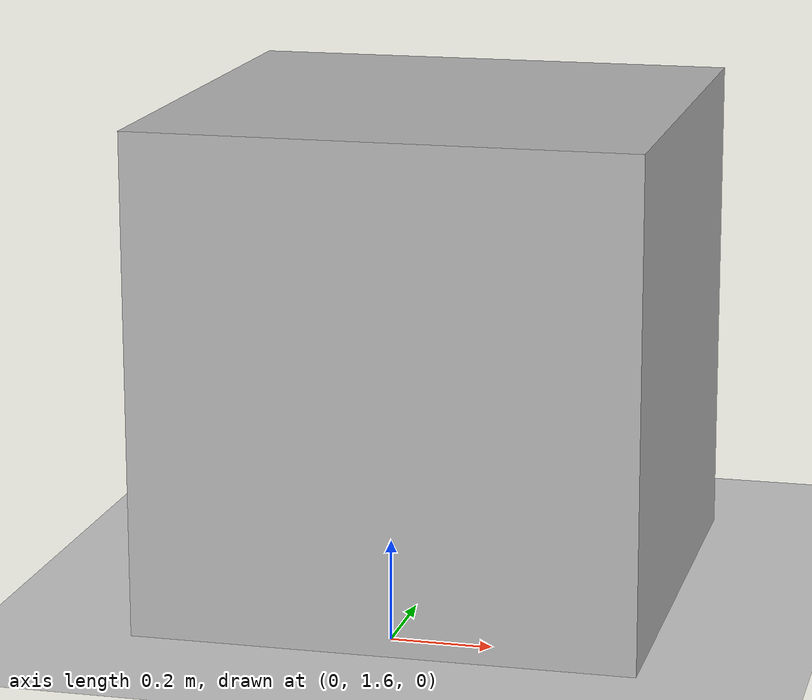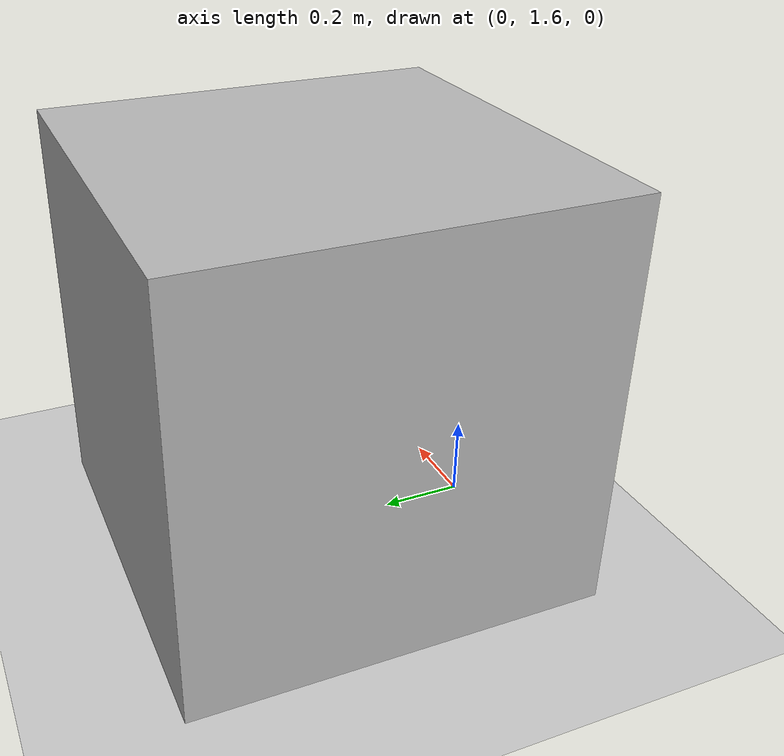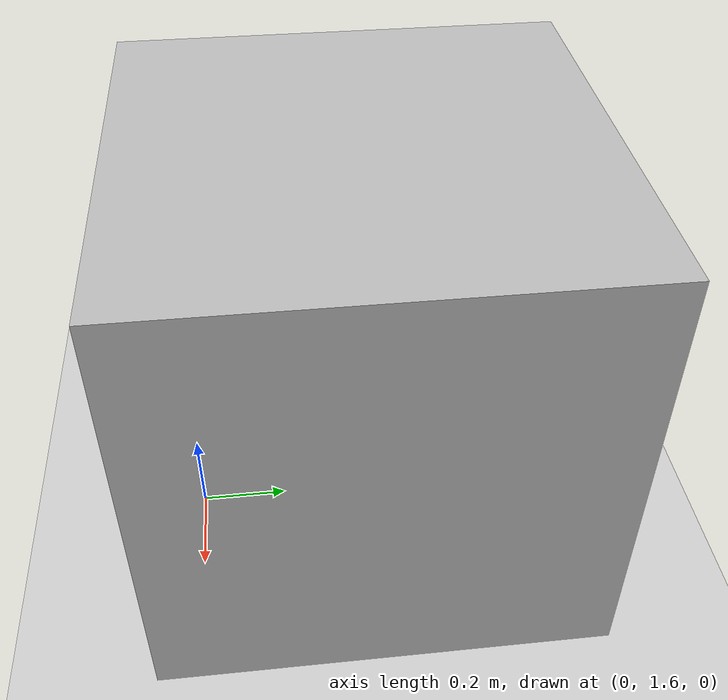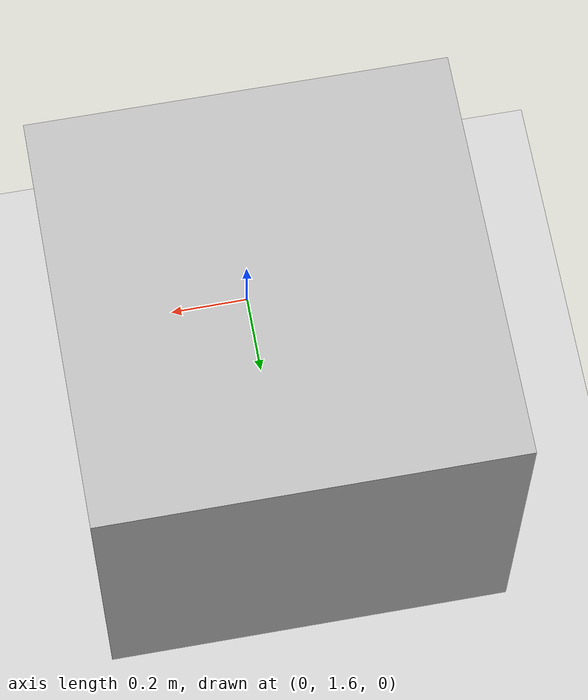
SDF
<?xml version="1.0" ?>
<sdf version="1.6">
  <world name="default">
    <include>
      <uri>model://sun</uri>
    </include>
    <include>
      <uri>model://ground_plane</uri>
    </include>
    <model name="box">
      <pose>0 2 0.5 0 0 0</pose>
      <link name="link">
        <collision name="collision">
          <geometry>
            <box>
              <size>1 1 1</size>
            </box>
          </geometry>
        </collision>
        <visual name="visual">
          <geometry>
            <box>
              <size>1 1 1</size>
            </box>
          </geometry>
          <material>
            <script>Gazebo/WoodPallet</script>
          </material>
        </visual>
      </link>
    </model>
    <model name="camera_model">
      <pose>0 0 -0.8 0 0 0</pose>
      <static>false</static>
      <link name="link">
        <pose>0 0 1.5 0 0 0</pose>
        <gravity>false</gravity>

        <sensor name="camera" type="camera">
            <visualize>true</visualize>
            <update_rate>30.0</update_rate>
            <camera name="head">
              <horizontal_fov>1.3962634</horizontal_fov>
              <image>
                <width>800</width>
                <height>800</height>
                <format>R8G8B8</format>
              </image>
              <clip>
                <near>0.02</near>
                <far>300</far>
              </clip>
              <noise>
                <type>gaussian</type>
                <mean>0.0</mean>
                <stddev>0.007</stddev>
              </noise>
            </camera>
            <plugin name="camera_controller" filename="libgazebo_ros_camera.so">
              <alwaysOn>true</alwaysOn>
              <updateRate>0.0</updateRate>
              <cameraName>rrbot/camera1</cameraName>
              <imageTopicName>image_raw</imageTopicName>
              <cameraInfoTopicName>camera_info</cameraInfoTopicName>
              <frameName>camera_link</frameName>
              <hackBaseline>0.07</hackBaseline>
              <distortionK1>0.0</distortionK1>
              <distortionK2>0.0</distortionK2>
              <distortionK3>0.0</distortionK3>
              <distortionT1>0.0</distortionT1>
              <distortionT2>0.0</distortionT2>
            </plugin>

        </sensor>
      </link>
    </model>
  </world>
</sdf>
